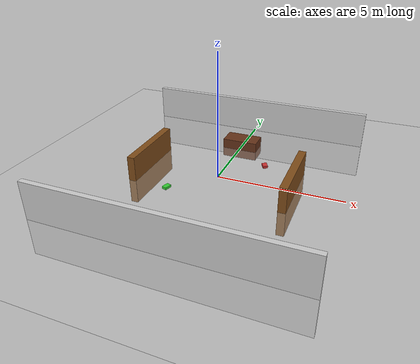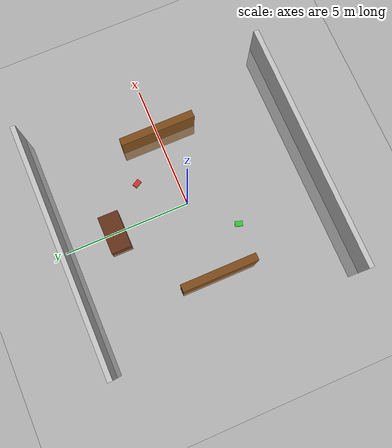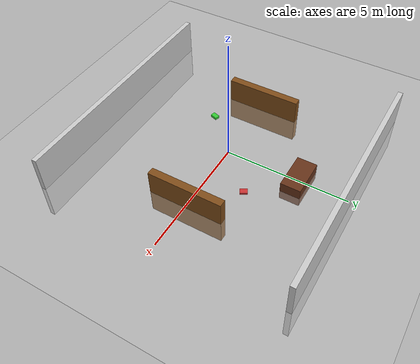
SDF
<?xml version="1.0" ?>
<sdf version="1.4">
  <world name="aura_world">

    <!-- Global light settings -->
    <light name='sun' type='directional'>
      <cast_shadows>1</cast_shadows>
      <pose>0 0 10 0 -0 0</pose>
      <diffuse>0.8 0.8 0.8 1</diffuse>
      <specular>0.2 0.2 0.2 1</specular>
      <attenuation>
        <range>1000</range>
        <constant>0.9</constant>
        <linear>0.01</linear>
        <quadratic>0.001</quadratic>
      </attenuation>
      <direction>-0.5 0.1 -0.9</direction>
    </light>

    <!-- Physics settings -->
    <physics name='default_physics' default='0' type='ode'>
      <gravity>0 0 -9.8066</gravity>
      <ode>
        <solver>
          <type>quick</type>
          <iters>150</iters>
          <sor>1.3</sor>
          <use_dynamic_moi_rescaling>0</use_dynamic_moi_rescaling>
        </solver>
        <constraints>
          <cfm>0.00001</cfm>
          <erp>0.2</erp>
          <contact_max_correcting_vel>1000</contact_max_correcting_vel>
          <contact_surface_layer>0.01</contact_surface_layer>
        </constraints>
      </ode>
      <max_step_size>0.004</max_step_size>
      <real_time_factor>1</real_time_factor>
      <real_time_update_rate>250</real_time_update_rate>
    </physics>

    <!-- Include ground plane -->
    <include>
      <uri>model://ground_plane</uri>
    </include>

    <!-- Library Environment -->

    <!-- Bookshelf 1 -->
    <model name="bookshelf_1">
      <static>true</static>
      <pose>3 0 0 0 0 0</pose>
      <link name="link">
        <collision name="collision">
          <geometry>
            <box>
              <size>0.3 3.0 2.0</size>
            </box>
          </geometry>
        </collision>
        <visual name="visual">
          <geometry>
            <box>
              <size>0.3 3.0 2.0</size>
            </box>
          </geometry>
          <material>
            <ambient>0.5 0.3 0.1 1</ambient>
            <diffuse>0.5 0.3 0.1 1</diffuse>
            <specular>0.01 0.01 0.01 1</specular>
            <emissive>0 0 0 0</emissive>
          </material>
        </visual>
        <inertial>
          <mass>1.0</mass>
          <inertia>
            <ixx>0.083</ixx>
            <ixy>0.0</ixy>
            <ixz>0.0</ixz>
            <iyy>0.083</iyy>
            <iyz>0.0</iyz>
            <izz>0.083</izz>
          </inertia>
        </inertial>
      </link>
    </model>

    <!-- Bookshelf 2 -->
    <model name="bookshelf_2">
      <static>true</static>
      <pose>-3 0 0 0 0 0</pose>
      <link name="link">
        <collision name="collision">
          <geometry>
            <box>
              <size>0.3 3.0 2.0</size>
            </box>
          </geometry>
        </collision>
        <visual name="visual">
          <geometry>
            <box>
              <size>0.3 3.0 2.0</size>
            </box>
          </geometry>
          <material>
            <ambient>0.5 0.3 0.1 1</ambient>
            <diffuse>0.5 0.3 0.1 1</diffuse>
            <specular>0.01 0.01 0.01 1</specular>
            <emissive>0 0 0 0</emissive>
          </material>
        </visual>
        <inertial>
          <mass>1.0</mass>
          <inertia>
            <ixx>0.083</ixx>
            <ixy>0.0</ixy>
            <ixz>0.0</ixz>
            <iyy>0.083</iyy>
            <iyz>0.0</iyz>
            <izz>0.083</izz>
          </inertia>
        </inertial>
      </link>
    </model>

    <!-- Reading Table -->
    <model name="reading_table">
      <static>true</static>
      <pose>0 3 0 0 0 0</pose>
      <link name="link">
        <collision name="collision">
          <geometry>
            <box>
              <size>1.5 0.8 0.8</size>
            </box>
          </geometry>
        </collision>
        <visual name="visual">
          <geometry>
            <box>
              <size>1.5 0.8 0.8</size>
            </box>
          </geometry>
          <material>
            <ambient>0.4 0.2 0.1 1</ambient>
            <diffuse>0.4 0.2 0.1 1</diffuse>
            <specular>0.1 0.1 0.1 1</specular>
            <emissive>0 0 0 0</emissive>
          </material>
        </visual>
        <inertial>
          <mass>1.0</mass>
          <inertia>
            <ixx>0.083</ixx>
            <ixy>0.0</ixy>
            <ixz>0.0</ixz>
            <iyy>0.083</iyy>
            <iyz>0.0</iyz>
            <izz>0.083</izz>
          </inertia>
        </inertial>
      </link>
    </model>

    <!-- Wall 1 -->
    <model name="wall_1">
      <static>true</static>
      <pose>0 5 0 0 0 0</pose>
      <link name="link">
        <collision name="collision">
          <geometry>
            <box>
              <size>10.0 0.2 3.0</size>
            </box>
          </geometry>
        </collision>
        <visual name="visual">
          <geometry>
            <box>
              <size>10.0 0.2 3.0</size>
            </box>
          </geometry>
          <material>
            <ambient>0.8 0.8 0.8 1</ambient>
            <diffuse>0.8 0.8 0.8 1</diffuse>
            <specular>0.01 0.01 0.01 1</specular>
            <emissive>0 0 0 0</emissive>
          </material>
        </visual>
        <inertial>
          <mass>1.0</mass>
          <inertia>
            <ixx>0.083</ixx>
            <ixy>0.0</ixy>
            <ixz>0.0</ixz>
            <iyy>0.083</iyy>
            <iyz>0.0</iyz>
            <izz>0.083</izz>
          </inertia>
        </inertial>
      </link>
    </model>

    <!-- Wall 2 -->
    <model name="wall_2">
      <static>true</static>
      <pose>0 -5 0 0 0 0</pose>
      <link name="link">
        <collision name="collision">
          <geometry>
            <box>
              <size>10.0 0.2 3.0</size>
            </box>
          </geometry>
        </collision>
        <visual name="visual">
          <geometry>
            <box>
              <size>10.0 0.2 3.0</size>
            </box>
          </geometry>
          <material>
            <ambient>0.8 0.8 0.8 1</ambient>
            <diffuse>0.8 0.8 0.8 1</diffuse>
            <specular>0.01 0.01 0.01 1</specular>
            <emissive>0 0 0 0</emissive>
          </material>
        </visual>
        <inertial>
          <mass>1.0</mass>
          <inertia>
            <ixx>0.083</ixx>
            <ixy>0.0</ixy>
            <ixz>0.0</ixz>
            <iyy>0.083</iyy>
            <iyz>0.0</iyz>
            <izz>0.083</izz>
          </inertia>
        </inertial>
      </link>
    </model>

    <!-- Some books scattered on the floor for navigation testing -->
    <model name="book_1">
      <static>true</static>
      <pose>1.5 1.5 0.05 0 0 0.5</pose>
      <link name="link">
        <collision name="collision">
          <geometry>
            <box>
              <size>0.2 0.3 0.1</size>
            </box>
          </geometry>
        </collision>
        <visual name="visual">
          <geometry>
            <box>
              <size>0.2 0.3 0.1</size>
            </box>
          </geometry>
          <material>
            <ambient>0.8 0.2 0.2 1</ambient>
            <diffuse>0.8 0.2 0.2 1</diffuse>
            <specular>0.01 0.01 0.01 1</specular>
            <emissive>0 0 0 0</emissive>
          </material>
        </visual>
        <inertial>
          <mass>0.1</mass>
          <inertia>
            <ixx>0.001</ixx>
            <ixy>0.0</ixy>
            <ixz>0.0</ixz>
            <iyy>0.001</iyy>
            <iyz>0.0</iyz>
            <izz>0.001</izz>
          </inertia>
        </inertial>
      </link>
    </model>

    <model name="book_2">
      <static>true</static>
      <pose>-1.5 -1.5 0.05 0 0 -0.3</pose>
      <link name="link">
        <collision name="collision">
          <geometry>
            <box>
              <size>0.2 0.3 0.1</size>
            </box>
          </geometry>
        </collision>
        <visual name="visual">
          <geometry>
            <box>
              <size>0.2 0.3 0.1</size>
            </box>
          </geometry>
          <material>
            <ambient>0.2 0.8 0.2 1</ambient>
            <diffuse>0.2 0.8 0.2 1</diffuse>
            <specular>0.01 0.01 0.01 1</specular>
            <emissive>0 0 0 0</emissive>
          </material>
        </visual>
        <inertial>
          <mass>0.1</mass>
          <inertia>
            <ixx>0.001</ixx>
            <ixy>0.0</ixy>
            <ixz>0.0</ixz>
            <iyy>0.001</iyy>
            <iyz>0.0</iyz>
            <izz>0.001</izz>
          </inertia>
        </inertial>
      </link>
    </model>

    <!-- Scene settings -->
    <scene>
      <ambient>0.4 0.4 0.4 1</ambient>
      <background>0.7 0.7 0.7 1</background>
      <shadows>1</shadows>
    </scene>

    <!-- GUI camera position -->
    <gui fullscreen='0'>
      <camera name='user_camera'>
        <pose>5.0 -5.0 3.0 0 0.275643 2.356190</pose>
        <view_controller>orbit</view_controller>
      </camera>
    </gui>

  </world>
</sdf>
